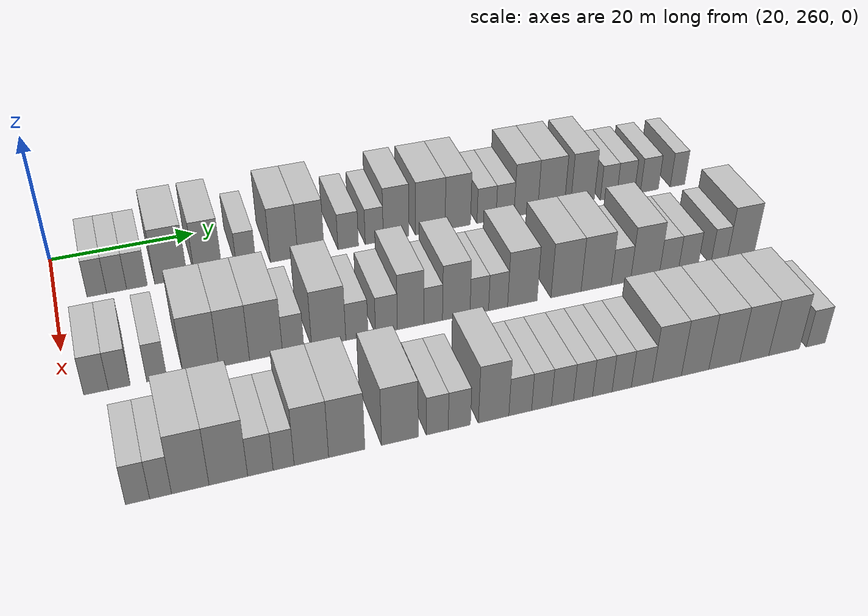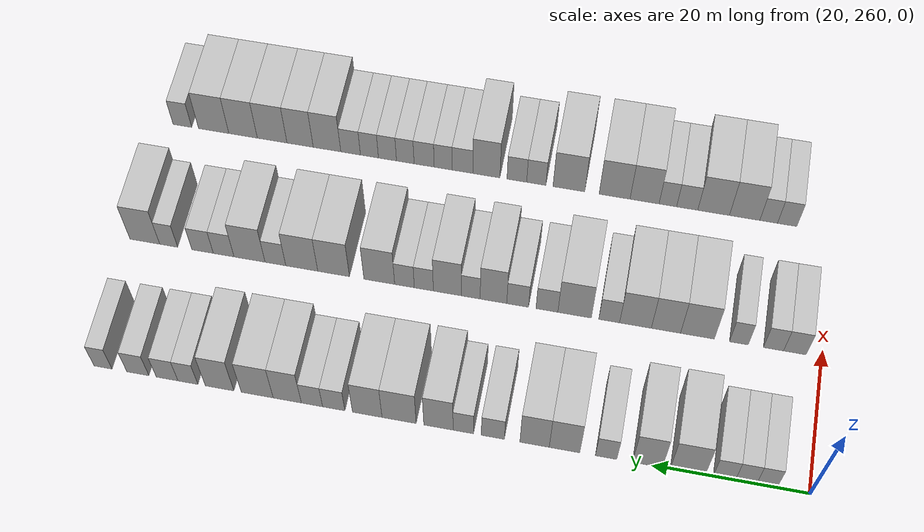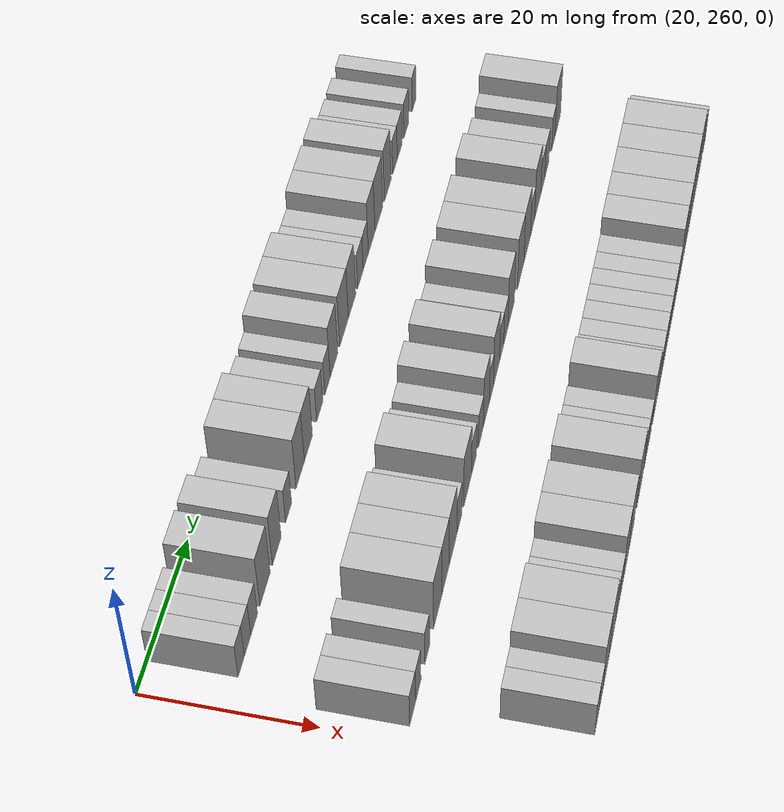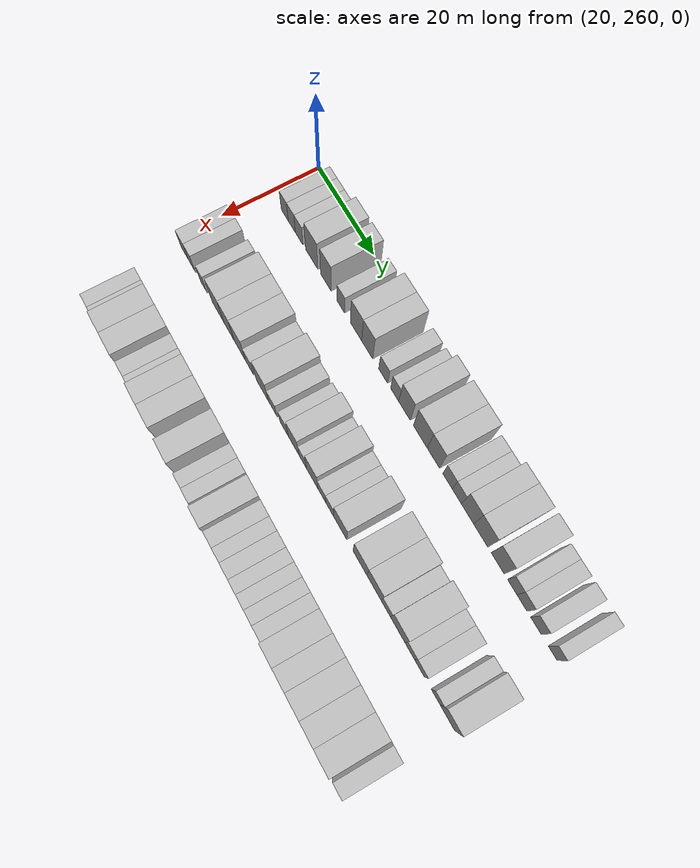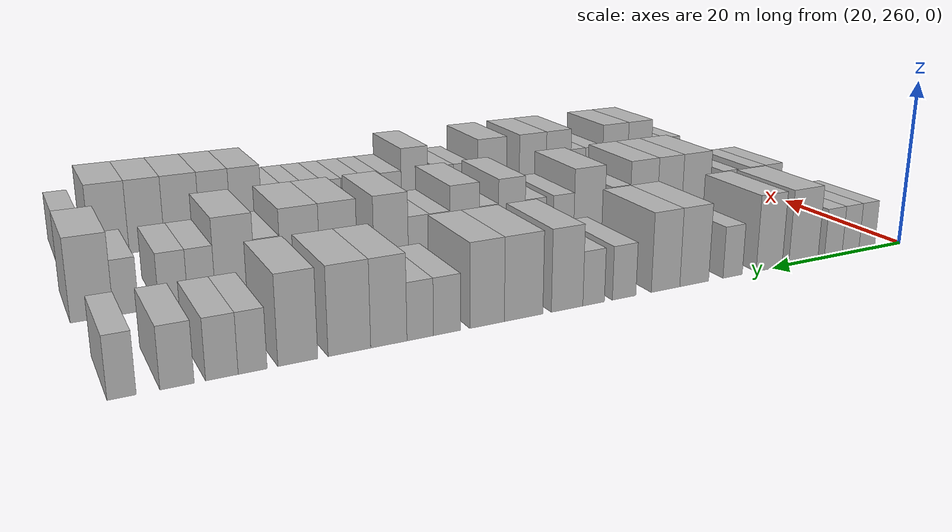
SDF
<sdf version="1.6">
 <world name="default">
  <model name="building_144">
   <static>1</static>
   <pose>25.0000 265.4624 0 0.000000 0.000000 0.000000</pose>
   <link name="link">
    <pose>0 0 3.00 0 0 0</pose>
    <collision name="collision"><geometry><box><size>10.0000 2.5818 6.0000</size></box></geometry></collision>
    <visual name="visual">
     <cast_shadows>0</cast_shadows>
     <geometry><box><size>10.0000 2.5818 6.0000</size></box></geometry>
     <material>
      <script>
       <uri>model://HANNAS_wall/materials/scripts</uri>
       <uri>model://HANNAS_wall/materials/textures</uri>
       <name>vrc/HANNAS_wall</name>
      </script>
     </material>
    </visual>
   </link>
  </model>
  <model name="building_145">
   <static>1</static>
   <pose>25.0000 268.0880 0 0.000000 0.000000 0.000000</pose>
   <link name="link">
    <pose>0 0 3.00 0 0 0</pose>
    <collision name="collision"><geometry><box><size>10.0000 2.6693 6.0000</size></box></geometry></collision>
    <visual name="visual">
     <cast_shadows>0</cast_shadows>
     <geometry><box><size>10.0000 2.6693 6.0000</size></box></geometry>
     <material>
      <script>
       <uri>model://HANNAS_wall/materials/scripts</uri>
       <uri>model://HANNAS_wall/materials/textures</uri>
       <name>vrc/HANNAS_wall</name>
      </script>
     </material>
    </visual>
   </link>
  </model>
  <model name="building_146">
   <static>1</static>
   <pose>25.0000 270.8141 0 0.000000 0.000000 0.000000</pose>
   <link name="link">
    <pose>0 0 3.00 0 0 0</pose>
    <collision name="collision"><geometry><box><size>10.0000 2.7828 6.0000</size></box></geometry></collision>
    <visual name="visual">
     <cast_shadows>0</cast_shadows>
     <geometry><box><size>10.0000 2.7828 6.0000</size></box></geometry>
     <material>
      <script>
       <uri>model://HANNAS_wall/materials/scripts</uri>
       <uri>model://HANNAS_wall/materials/textures</uri>
       <name>vrc/HANNAS_wall</name>
      </script>
     </material>
    </visual>
   </link>
  </model>
  <model name="building_147">
   <static>1</static>
   <pose>25.0000 275.4238 0 0.000000 0.000000 0.000000</pose>
   <link name="link">
    <pose>0 0 4.50 0 0 0</pose>
    <collision name="collision"><geometry><box><size>10.0000 4.4367 9.0000</size></box></geometry></collision>
    <visual name="visual">
     <cast_shadows>0</cast_shadows>
     <geometry><box><size>10.0000 4.4367 9.0000</size></box></geometry>
     <material>
      <script>
       <uri>model://HANNAS_wall/materials/scripts</uri>
       <uri>model://HANNAS_wall/materials/textures</uri>
       <name>vrc/HANNAS_wall</name>
      </script>
     </material>
    </visual>
   </link>
  </model>
  <model name="building_148">
   <static>1</static>
   <pose>25.0000 280.5439 0 0.000000 0.000000 0.000000</pose>
   <link name="link">
    <pose>0 0 4.50 0 0 0</pose>
    <collision name="collision"><geometry><box><size>10.0000 3.8035 9.0000</size></box></geometry></collision>
    <visual name="visual">
     <cast_shadows>0</cast_shadows>
     <geometry><box><size>10.0000 3.8035 9.0000</size></box></geometry>
     <material>
      <script>
       <uri>model://HANNAS_wall/materials/scripts</uri>
       <uri>model://HANNAS_wall/materials/textures</uri>
       <name>vrc/HANNAS_wall</name>
      </script>
     </material>
    </visual>
   </link>
  </model>
  <model name="building_149">
   <static>1</static>
   <pose>25.0000 285.8145 0 0.000000 0.000000 0.000000</pose>
   <link name="link">
    <pose>0 0 3.00 0 0 0</pose>
    <collision name="collision"><geometry><box><size>10.0000 2.7378 6.0000</size></box></geometry></collision>
    <visual name="visual">
     <cast_shadows>0</cast_shadows>
     <geometry><box><size>10.0000 2.7378 6.0000</size></box></geometry>
     <material>
      <script>
       <uri>model://HANNAS_wall/materials/scripts</uri>
       <uri>model://HANNAS_wall/materials/textures</uri>
       <name>vrc/HANNAS_wall</name>
      </script>
     </material>
    </visual>
   </link>
  </model>
  <model name="building_150">
   <static>1</static>
   <pose>25.0000 291.1506 0 0.000000 0.000000 0.000000</pose>
   <link name="link">
    <pose>0 0 4.50 0 0 0</pose>
    <collision name="collision"><geometry><box><size>10.0000 3.9344 9.0000</size></box></geometry></collision>
    <visual name="visual">
     <cast_shadows>0</cast_shadows>
     <geometry><box><size>10.0000 3.9344 9.0000</size></box></geometry>
     <material>
      <script>
       <uri>model://HANNAS_wall/materials/scripts</uri>
       <uri>model://HANNAS_wall/materials/textures</uri>
       <name>vrc/HANNAS_wall</name>
      </script>
     </material>
    </visual>
   </link>
  </model>
  <model name="building_151">
   <static>1</static>
   <pose>25.0000 295.0099 0 0.000000 0.000000 0.000000</pose>
   <link name="link">
    <pose>0 0 4.50 0 0 0</pose>
    <collision name="collision"><geometry><box><size>10.0000 3.7841 9.0000</size></box></geometry></collision>
    <visual name="visual">
     <cast_shadows>0</cast_shadows>
     <geometry><box><size>10.0000 3.7841 9.0000</size></box></geometry>
     <material>
      <script>
       <uri>model://HANNAS_wall/materials/scripts</uri>
       <uri>model://HANNAS_wall/materials/textures</uri>
       <name>vrc/HANNAS_wall</name>
      </script>
     </material>
    </visual>
   </link>
  </model>
  <model name="building_152">
   <static>1</static>
   <pose>25.0000 300.3996 0 0.000000 0.000000 0.000000</pose>
   <link name="link">
    <pose>0 0 3.00 0 0 0</pose>
    <collision name="collision"><geometry><box><size>10.0000 2.9953 6.0000</size></box></geometry></collision>
    <visual name="visual">
     <cast_shadows>0</cast_shadows>
     <geometry><box><size>10.0000 2.9953 6.0000</size></box></geometry>
     <material>
      <script>
       <uri>model://HANNAS_wall/materials/scripts</uri>
       <uri>model://HANNAS_wall/materials/textures</uri>
       <name>vrc/HANNAS_wall</name>
      </script>
     </material>
    </visual>
   </link>
  </model>
  <model name="building_153">
   <static>1</static>
   <pose>25.0000 304.2301 0 0.000000 0.000000 0.000000</pose>
   <link name="link">
    <pose>0 0 3.00 0 0 0</pose>
    <collision name="collision"><geometry><box><size>10.0000 2.6656 6.0000</size></box></geometry></collision>
    <visual name="visual">
     <cast_shadows>0</cast_shadows>
     <geometry><box><size>10.0000 2.6656 6.0000</size></box></geometry>
     <material>
      <script>
       <uri>model://HANNAS_wall/materials/scripts</uri>
       <uri>model://HANNAS_wall/materials/textures</uri>
       <name>vrc/HANNAS_wall</name>
      </script>
     </material>
    </visual>
   </link>
  </model>
  <model name="building_154">
   <static>1</static>
   <pose>25.0000 307.4684 0 0.000000 0.000000 0.000000</pose>
   <link name="link">
    <pose>0 0 4.50 0 0 0</pose>
    <collision name="collision"><geometry><box><size>10.0000 3.8110 9.0000</size></box></geometry></collision>
    <visual name="visual">
     <cast_shadows>0</cast_shadows>
     <geometry><box><size>10.0000 3.8110 9.0000</size></box></geometry>
     <material>
      <script>
       <uri>model://HANNAS_wall/materials/scripts</uri>
       <uri>model://HANNAS_wall/materials/textures</uri>
       <name>vrc/HANNAS_wall</name>
      </script>
     </material>
    </visual>
   </link>
  </model>
  <model name="building_155">
   <static>1</static>
   <pose>25.0000 312.6091 0 0.000000 0.000000 0.000000</pose>
   <link name="link">
    <pose>0 0 4.50 0 0 0</pose>
    <collision name="collision"><geometry><box><size>10.0000 4.4704 9.0000</size></box></geometry></collision>
    <visual name="visual">
     <cast_shadows>0</cast_shadows>
     <geometry><box><size>10.0000 4.4704 9.0000</size></box></geometry>
     <material>
      <script>
       <uri>model://HANNAS_wall/materials/scripts</uri>
       <uri>model://HANNAS_wall/materials/textures</uri>
       <name>vrc/HANNAS_wall</name>
      </script>
     </material>
    </visual>
   </link>
  </model>
  <model name="building_156">
   <static>1</static>
   <pose>25.0000 316.7868 0 0.000000 0.000000 0.000000</pose>
   <link name="link">
    <pose>0 0 4.50 0 0 0</pose>
    <collision name="collision"><geometry><box><size>10.0000 3.8850 9.0000</size></box></geometry></collision>
    <visual name="visual">
     <cast_shadows>0</cast_shadows>
     <geometry><box><size>10.0000 3.8850 9.0000</size></box></geometry>
     <material>
      <script>
       <uri>model://HANNAS_wall/materials/scripts</uri>
       <uri>model://HANNAS_wall/materials/textures</uri>
       <name>vrc/HANNAS_wall</name>
      </script>
     </material>
    </visual>
   </link>
  </model>
  <model name="building_157">
   <static>1</static>
   <pose>25.0000 321.2034 0 0.000000 0.000000 0.000000</pose>
   <link name="link">
    <pose>0 0 3.00 0 0 0</pose>
    <collision name="collision"><geometry><box><size>10.0000 2.9481 6.0000</size></box></geometry></collision>
    <visual name="visual">
     <cast_shadows>0</cast_shadows>
     <geometry><box><size>10.0000 2.9481 6.0000</size></box></geometry>
     <material>
      <script>
       <uri>model://HANNAS_wall/materials/scripts</uri>
       <uri>model://HANNAS_wall/materials/textures</uri>
       <name>vrc/HANNAS_wall</name>
      </script>
     </material>
    </visual>
   </link>
  </model>
  <model name="building_158">
   <static>1</static>
   <pose>25.0000 324.0824 0 0.000000 0.000000 0.000000</pose>
   <link name="link">
    <pose>0 0 3.00 0 0 0</pose>
    <collision name="collision"><geometry><box><size>10.0000 2.8100 6.0000</size></box></geometry></collision>
    <visual name="visual">
     <cast_shadows>0</cast_shadows>
     <geometry><box><size>10.0000 2.8100 6.0000</size></box></geometry>
     <material>
      <script>
       <uri>model://HANNAS_wall/materials/scripts</uri>
       <uri>model://HANNAS_wall/materials/textures</uri>
       <name>vrc/HANNAS_wall</name>
      </script>
     </material>
    </visual>
   </link>
  </model>
  <model name="building_159">
   <static>1</static>
   <pose>25.0000 327.3553 0 0.000000 0.000000 0.000000</pose>
   <link name="link">
    <pose>0 0 4.50 0 0 0</pose>
    <collision name="collision"><geometry><box><size>10.0000 3.7358 9.0000</size></box></geometry></collision>
    <visual name="visual">
     <cast_shadows>0</cast_shadows>
     <geometry><box><size>10.0000 3.7358 9.0000</size></box></geometry>
     <material>
      <script>
       <uri>model://HANNAS_wall/materials/scripts</uri>
       <uri>model://HANNAS_wall/materials/textures</uri>
       <name>vrc/HANNAS_wall</name>
      </script>
     </material>
    </visual>
   </link>
  </model>
  <model name="building_160">
   <static>1</static>
   <pose>25.0000 331.3475 0 0.000000 0.000000 0.000000</pose>
   <link name="link">
    <pose>0 0 4.50 0 0 0</pose>
    <collision name="collision"><geometry><box><size>10.0000 4.2485 9.0000</size></box></geometry></collision>
    <visual name="visual">
     <cast_shadows>0</cast_shadows>
     <geometry><box><size>10.0000 4.2485 9.0000</size></box></geometry>
     <material>
      <script>
       <uri>model://HANNAS_wall/materials/scripts</uri>
       <uri>model://HANNAS_wall/materials/textures</uri>
       <name>vrc/HANNAS_wall</name>
      </script>
     </material>
    </visual>
   </link>
  </model>
  <model name="building_161">
   <static>1</static>
   <pose>25.0000 336.3809 0 0.000000 0.000000 0.000000</pose>
   <link name="link">
    <pose>0 0 4.50 0 0 0</pose>
    <collision name="collision"><geometry><box><size>10.0000 3.8183 9.0000</size></box></geometry></collision>
    <visual name="visual">
     <cast_shadows>0</cast_shadows>
     <geometry><box><size>10.0000 3.8183 9.0000</size></box></geometry>
     <material>
      <script>
       <uri>model://HANNAS_wall/materials/scripts</uri>
       <uri>model://HANNAS_wall/materials/textures</uri>
       <name>vrc/HANNAS_wall</name>
      </script>
     </material>
    </visual>
   </link>
  </model>
  <model name="building_162">
   <static>1</static>
   <pose>25.0000 340.6238 0 0.000000 0.000000 0.000000</pose>
   <link name="link">
    <pose>0 0 3.00 0 0 0</pose>
    <collision name="collision"><geometry><box><size>10.0000 2.6676 6.0000</size></box></geometry></collision>
    <visual name="visual">
     <cast_shadows>0</cast_shadows>
     <geometry><box><size>10.0000 2.6676 6.0000</size></box></geometry>
     <material>
      <script>
       <uri>model://HANNAS_wall/materials/scripts</uri>
       <uri>model://HANNAS_wall/materials/textures</uri>
       <name>vrc/HANNAS_wall</name>
      </script>
     </material>
    </visual>
   </link>
  </model>
  <model name="building_163">
   <static>1</static>
   <pose>25.0000 343.4201 0 0.000000 0.000000 0.000000</pose>
   <link name="link">
    <pose>0 0 3.00 0 0 0</pose>
    <collision name="collision"><geometry><box><size>10.0000 2.9250 6.0000</size></box></geometry></collision>
    <visual name="visual">
     <cast_shadows>0</cast_shadows>
     <geometry><box><size>10.0000 2.9250 6.0000</size></box></geometry>
     <material>
      <script>
       <uri>model://HANNAS_wall/materials/scripts</uri>
       <uri>model://HANNAS_wall/materials/textures</uri>
       <name>vrc/HANNAS_wall</name>
      </script>
     </material>
    </visual>
   </link>
  </model>
  <model name="building_164">
   <static>1</static>
   <pose>25.0000 347.3724 0 0.000000 0.000000 0.000000</pose>
   <link name="link">
    <pose>0 0 3.00 0 0 0</pose>
    <collision name="collision"><geometry><box><size>10.0000 2.9797 6.0000</size></box></geometry></collision>
    <visual name="visual">
     <cast_shadows>0</cast_shadows>
     <geometry><box><size>10.0000 2.9797 6.0000</size></box></geometry>
     <material>
      <script>
       <uri>model://HANNAS_wall/materials/scripts</uri>
       <uri>model://HANNAS_wall/materials/textures</uri>
       <name>vrc/HANNAS_wall</name>
      </script>
     </material>
    </visual>
   </link>
  </model>
  <model name="building_165">
   <static>1</static>
   <pose>25.0000 352.0794 0 0.000000 0.000000 0.000000</pose>
   <link name="link">
    <pose>0 0 3.00 0 0 0</pose>
    <collision name="collision"><geometry><box><size>10.0000 2.4342 6.0000</size></box></geometry></collision>
    <visual name="visual">
     <cast_shadows>0</cast_shadows>
     <geometry><box><size>10.0000 2.4342 6.0000</size></box></geometry>
     <material>
      <script>
       <uri>model://HANNAS_wall/materials/scripts</uri>
       <uri>model://HANNAS_wall/materials/textures</uri>
       <name>vrc/HANNAS_wall</name>
      </script>
     </material>
    </visual>
   </link>
  </model>
  <model name="building_309">
   <static>1</static>
   <pose>44.0000 263.5628 0 0.000000 0.000000 0.000000</pose>
   <link name="link">
    <pose>0 0 3.00 0 0 0</pose>
    <collision name="collision"><geometry><box><size>10.0000 2.9654 6.0000</size></box></geometry></collision>
    <visual name="visual">
     <cast_shadows>0</cast_shadows>
     <geometry><box><size>10.0000 2.9654 6.0000</size></box></geometry>
     <material>
      <script>
       <uri>model://HANNAS_wall/materials/scripts</uri>
       <uri>model://HANNAS_wall/materials/textures</uri>
       <name>vrc/HANNAS_wall</name>
      </script>
     </material>
    </visual>
   </link>
  </model>
  <model name="building_310">
   <static>1</static>
   <pose>44.0000 266.3682 0 0.000000 0.000000 0.000000</pose>
   <link name="link">
    <pose>0 0 3.00 0 0 0</pose>
    <collision name="collision"><geometry><box><size>10.0000 2.6452 6.0000</size></box></geometry></collision>
    <visual name="visual">
     <cast_shadows>0</cast_shadows>
     <geometry><box><size>10.0000 2.6452 6.0000</size></box></geometry>
     <material>
      <script>
       <uri>model://HANNAS_wall/materials/scripts</uri>
       <uri>model://HANNAS_wall/materials/textures</uri>
       <name>vrc/HANNAS_wall</name>
      </script>
     </material>
    </visual>
   </link>
  </model>
  <model name="building_311">
   <static>1</static>
   <pose>44.0000 270.9281 0 0.000000 0.000000 0.000000</pose>
   <link name="link">
    <pose>0 0 3.00 0 0 0</pose>
    <collision name="collision"><geometry><box><size>10.0000 2.4746 6.0000</size></box></geometry></collision>
    <visual name="visual">
     <cast_shadows>0</cast_shadows>
     <geometry><box><size>10.0000 2.4746 6.0000</size></box></geometry>
     <material>
      <script>
       <uri>model://HANNAS_wall/materials/scripts</uri>
       <uri>model://HANNAS_wall/materials/textures</uri>
       <name>vrc/HANNAS_wall</name>
      </script>
     </material>
    </visual>
   </link>
  </model>
  <model name="building_312">
   <static>1</static>
   <pose>44.0000 276.4060 0 0.000000 0.000000 0.000000</pose>
   <link name="link">
    <pose>0 0 4.50 0 0 0</pose>
    <collision name="collision"><geometry><box><size>10.0000 4.4813 9.0000</size></box></geometry></collision>
    <visual name="visual">
     <cast_shadows>0</cast_shadows>
     <geometry><box><size>10.0000 4.4813 9.0000</size></box></geometry>
     <material>
      <script>
       <uri>model://HANNAS_wall/materials/scripts</uri>
       <uri>model://HANNAS_wall/materials/textures</uri>
       <name>vrc/HANNAS_wall</name>
      </script>
     </material>
    </visual>
   </link>
  </model>
  <model name="building_313">
   <static>1</static>
   <pose>44.0000 280.5909 0 0.000000 0.000000 0.000000</pose>
   <link name="link">
    <pose>0 0 4.50 0 0 0</pose>
    <collision name="collision"><geometry><box><size>10.0000 3.8885 9.0000</size></box></geometry></collision>
    <visual name="visual">
     <cast_shadows>0</cast_shadows>
     <geometry><box><size>10.0000 3.8885 9.0000</size></box></geometry>
     <material>
      <script>
       <uri>model://HANNAS_wall/materials/scripts</uri>
       <uri>model://HANNAS_wall/materials/textures</uri>
       <name>vrc/HANNAS_wall</name>
      </script>
     </material>
    </visual>
   </link>
  </model>
  <model name="building_314">
   <static>1</static>
   <pose>44.0000 284.6546 0 0.000000 0.000000 0.000000</pose>
   <link name="link">
    <pose>0 0 4.50 0 0 0</pose>
    <collision name="collision"><geometry><box><size>10.0000 4.2390 9.0000</size></box></geometry></collision>
    <visual name="visual">
     <cast_shadows>0</cast_shadows>
     <geometry><box><size>10.0000 4.2390 9.0000</size></box></geometry>
     <material>
      <script>
       <uri>model://HANNAS_wall/materials/scripts</uri>
       <uri>model://HANNAS_wall/materials/textures</uri>
       <name>vrc/HANNAS_wall</name>
      </script>
     </material>
    </visual>
   </link>
  </model>
  <model name="building_315">
   <static>1</static>
   <pose>44.0000 288.1601 0 0.000000 0.000000 0.000000</pose>
   <link name="link">
    <pose>0 0 3.00 0 0 0</pose>
    <collision name="collision"><geometry><box><size>10.0000 2.7719 6.0000</size></box></geometry></collision>
    <visual name="visual">
     <cast_shadows>0</cast_shadows>
     <geometry><box><size>10.0000 2.7719 6.0000</size></box></geometry>
     <material>
      <script>
       <uri>model://HANNAS_wall/materials/scripts</uri>
       <uri>model://HANNAS_wall/materials/textures</uri>
       <name>vrc/HANNAS_wall</name>
      </script>
     </material>
    </visual>
   </link>
  </model>
  <model name="building_316">
   <static>1</static>
   <pose>44.0000 292.7944 0 0.000000 0.000000 0.000000</pose>
   <link name="link">
    <pose>0 0 4.50 0 0 0</pose>
    <collision name="collision"><geometry><box><size>10.0000 4.4967 9.0000</size></box></geometry></collision>
    <visual name="visual">
     <cast_shadows>0</cast_shadows>
     <geometry><box><size>10.0000 4.4967 9.0000</size></box></geometry>
     <material>
      <script>
       <uri>model://HANNAS_wall/materials/scripts</uri>
       <uri>model://HANNAS_wall/materials/textures</uri>
       <name>vrc/HANNAS_wall</name>
      </script>
     </material>
    </visual>
   </link>
  </model>
  <model name="building_317">
   <static>1</static>
   <pose>44.0000 296.5218 0 0.000000 0.000000 0.000000</pose>
   <link name="link">
    <pose>0 0 3.00 0 0 0</pose>
    <collision name="collision"><geometry><box><size>10.0000 2.9581 6.0000</size></box></geometry></collision>
    <visual name="visual">
     <cast_shadows>0</cast_shadows>
     <geometry><box><size>10.0000 2.9581 6.0000</size></box></geometry>
     <material>
      <script>
       <uri>model://HANNAS_wall/materials/scripts</uri>
       <uri>model://HANNAS_wall/materials/textures</uri>
       <name>vrc/HANNAS_wall</name>
      </script>
     </material>
    </visual>
   </link>
  </model>
  <model name="building_318">
   <static>1</static>
   <pose>44.0000 300.4734 0 0.000000 0.000000 0.000000</pose>
   <link name="link">
    <pose>0 0 3.00 0 0 0</pose>
    <collision name="collision"><geometry><box><size>10.0000 2.9452 6.0000</size></box></geometry></collision>
    <visual name="visual">
     <cast_shadows>0</cast_shadows>
     <geometry><box><size>10.0000 2.9452 6.0000</size></box></geometry>
     <material>
      <script>
       <uri>model://HANNAS_wall/materials/scripts</uri>
       <uri>model://HANNAS_wall/materials/textures</uri>
       <name>vrc/HANNAS_wall</name>
      </script>
     </material>
    </visual>
   </link>
  </model>
  <model name="building_319">
   <static>1</static>
   <pose>44.0000 303.7548 0 0.000000 0.000000 0.000000</pose>
   <link name="link">
    <pose>0 0 4.50 0 0 0</pose>
    <collision name="collision"><geometry><box><size>10.0000 3.6176 9.0000</size></box></geometry></collision>
    <visual name="visual">
     <cast_shadows>0</cast_shadows>
     <geometry><box><size>10.0000 3.6176 9.0000</size></box></geometry>
     <material>
      <script>
       <uri>model://HANNAS_wall/materials/scripts</uri>
       <uri>model://HANNAS_wall/materials/textures</uri>
       <name>vrc/HANNAS_wall</name>
      </script>
     </material>
    </visual>
   </link>
  </model>
  <model name="building_320">
   <static>1</static>
   <pose>44.0000 306.8338 0 0.000000 0.000000 0.000000</pose>
   <link name="link">
    <pose>0 0 3.00 0 0 0</pose>
    <collision name="collision"><geometry><box><size>10.0000 2.5403 6.0000</size></box></geometry></collision>
    <visual name="visual">
     <cast_shadows>0</cast_shadows>
     <geometry><box><size>10.0000 2.5403 6.0000</size></box></geometry>
     <material>
      <script>
       <uri>model://HANNAS_wall/materials/scripts</uri>
       <uri>model://HANNAS_wall/materials/textures</uri>
       <name>vrc/HANNAS_wall</name>
      </script>
     </material>
    </visual>
   </link>
  </model>
  <model name="building_321">
   <static>1</static>
   <pose>44.0000 310.0144 0 0.000000 0.000000 0.000000</pose>
   <link name="link">
    <pose>0 0 4.50 0 0 0</pose>
    <collision name="collision"><geometry><box><size>10.0000 3.8211 9.0000</size></box></geometry></collision>
    <visual name="visual">
     <cast_shadows>0</cast_shadows>
     <geometry><box><size>10.0000 3.8211 9.0000</size></box></geometry>
     <material>
      <script>
       <uri>model://HANNAS_wall/materials/scripts</uri>
       <uri>model://HANNAS_wall/materials/textures</uri>
       <name>vrc/HANNAS_wall</name>
      </script>
     </material>
    </visual>
   </link>
  </model>
  <model name="building_322">
   <static>1</static>
   <pose>44.0000 313.2288 0 0.000000 0.000000 0.000000</pose>
   <link name="link">
    <pose>0 0 3.00 0 0 0</pose>
    <collision name="collision"><geometry><box><size>10.0000 2.6077 6.0000</size></box></geometry></collision>
    <visual name="visual">
     <cast_shadows>0</cast_shadows>
     <geometry><box><size>10.0000 2.6077 6.0000</size></box></geometry>
     <material>
      <script>
       <uri>model://HANNAS_wall/materials/scripts</uri>
       <uri>model://HANNAS_wall/materials/textures</uri>
       <name>vrc/HANNAS_wall</name>
      </script>
     </material>
    </visual>
   </link>
  </model>
  <model name="building_323">
   <static>1</static>
   <pose>44.0000 315.8774 0 0.000000 0.000000 0.000000</pose>
   <link name="link">
    <pose>0 0 3.00 0 0 0</pose>
    <collision name="collision"><geometry><box><size>10.0000 2.6895 6.0000</size></box></geometry></collision>
    <visual name="visual">
     <cast_shadows>0</cast_shadows>
     <geometry><box><size>10.0000 2.6895 6.0000</size></box></geometry>
     <material>
      <script>
       <uri>model://HANNAS_wall/materials/scripts</uri>
       <uri>model://HANNAS_wall/materials/textures</uri>
       <name>vrc/HANNAS_wall</name>
      </script>
     </material>
    </visual>
   </link>
  </model>
  <model name="building_324">
   <static>1</static>
   <pose>44.0000 319.3320 0 0.000000 0.000000 0.000000</pose>
   <link name="link">
    <pose>0 0 4.50 0 0 0</pose>
    <collision name="collision"><geometry><box><size>10.0000 4.2196 9.0000</size></box></geometry></collision>
    <visual name="visual">
     <cast_shadows>0</cast_shadows>
     <geometry><box><size>10.0000 4.2196 9.0000</size></box></geometry>
     <material>
      <script>
       <uri>model://HANNAS_wall/materials/scripts</uri>
       <uri>model://HANNAS_wall/materials/textures</uri>
       <name>vrc/HANNAS_wall</name>
      </script>
     </material>
    </visual>
   </link>
  </model>
  <model name="building_325">
   <static>1</static>
   <pose>44.0000 325.6332 0 0.000000 0.000000 0.000000</pose>
   <link name="link">
    <pose>0 0 4.50 0 0 0</pose>
    <collision name="collision"><geometry><box><size>10.0000 4.3828 9.0000</size></box></geometry></collision>
    <visual name="visual">
     <cast_shadows>0</cast_shadows>
     <geometry><box><size>10.0000 4.3828 9.0000</size></box></geometry>
     <material>
      <script>
       <uri>model://HANNAS_wall/materials/scripts</uri>
       <uri>model://HANNAS_wall/materials/textures</uri>
       <name>vrc/HANNAS_wall</name>
      </script>
     </material>
    </visual>
   </link>
  </model>
  <model name="building_326">
   <static>1</static>
   <pose>44.0000 330.0427 0 0.000000 0.000000 0.000000</pose>
   <link name="link">
    <pose>0 0 4.50 0 0 0</pose>
    <collision name="collision"><geometry><box><size>10.0000 4.4362 9.0000</size></box></geometry></collision>
    <visual name="visual">
     <cast_shadows>0</cast_shadows>
     <geometry><box><size>10.0000 4.4362 9.0000</size></box></geometry>
     <material>
      <script>
       <uri>model://HANNAS_wall/materials/scripts</uri>
       <uri>model://HANNAS_wall/materials/textures</uri>
       <name>vrc/HANNAS_wall</name>
      </script>
     </material>
    </visual>
   </link>
  </model>
  <model name="building_327">
   <static>1</static>
   <pose>44.0000 333.7032 0 0.000000 0.000000 0.000000</pose>
   <link name="link">
    <pose>0 0 3.00 0 0 0</pose>
    <collision name="collision"><geometry><box><size>10.0000 2.8849 6.0000</size></box></geometry></collision>
    <visual name="visual">
     <cast_shadows>0</cast_shadows>
     <geometry><box><size>10.0000 2.8849 6.0000</size></box></geometry>
     <material>
      <script>
       <uri>model://HANNAS_wall/materials/scripts</uri>
       <uri>model://HANNAS_wall/materials/textures</uri>
       <name>vrc/HANNAS_wall</name>
      </script>
     </material>
    </visual>
   </link>
  </model>
  <model name="building_328">
   <static>1</static>
   <pose>44.0000 337.3113 0 0.000000 0.000000 0.000000</pose>
   <link name="link">
    <pose>0 0 4.50 0 0 0</pose>
    <collision name="collision"><geometry><box><size>10.0000 4.3311 9.0000</size></box></geometry></collision>
    <visual name="visual">
     <cast_shadows>0</cast_shadows>
     <geometry><box><size>10.0000 4.3311 9.0000</size></box></geometry>
     <material>
      <script>
       <uri>model://HANNAS_wall/materials/scripts</uri>
       <uri>model://HANNAS_wall/materials/textures</uri>
       <name>vrc/HANNAS_wall</name>
      </script>
     </material>
    </visual>
   </link>
  </model>
  <model name="building_329">
   <static>1</static>
   <pose>44.0000 340.9295 0 0.000000 0.000000 0.000000</pose>
   <link name="link">
    <pose>0 0 3.00 0 0 0</pose>
    <collision name="collision"><geometry><box><size>10.0000 2.9052 6.0000</size></box></geometry></collision>
    <visual name="visual">
     <cast_shadows>0</cast_shadows>
     <geometry><box><size>10.0000 2.9052 6.0000</size></box></geometry>
     <material>
      <script>
       <uri>model://HANNAS_wall/materials/scripts</uri>
       <uri>model://HANNAS_wall/materials/textures</uri>
       <name>vrc/HANNAS_wall</name>
      </script>
     </material>
    </visual>
   </link>
  </model>
  <model name="building_330">
   <static>1</static>
   <pose>44.0000 343.8819 0 0.000000 0.000000 0.000000</pose>
   <link name="link">
    <pose>0 0 3.00 0 0 0</pose>
    <collision name="collision"><geometry><box><size>10.0000 2.9996 6.0000</size></box></geometry></collision>
    <visual name="visual">
     <cast_shadows>0</cast_shadows>
     <geometry><box><size>10.0000 2.9996 6.0000</size></box></geometry>
     <material>
      <script>
       <uri>model://HANNAS_wall/materials/scripts</uri>
       <uri>model://HANNAS_wall/materials/textures</uri>
       <name>vrc/HANNAS_wall</name>
      </script>
     </material>
    </visual>
   </link>
  </model>
  <model name="building_331">
   <static>1</static>
   <pose>44.0000 348.6469 0 0.000000 0.000000 0.000000</pose>
   <link name="link">
    <pose>0 0 3.00 0 0 0</pose>
    <collision name="collision"><geometry><box><size>10.0000 2.5304 6.0000</size></box></geometry></collision>
    <visual name="visual">
     <cast_shadows>0</cast_shadows>
     <geometry><box><size>10.0000 2.5304 6.0000</size></box></geometry>
     <material>
      <script>
       <uri>model://HANNAS_wall/materials/scripts</uri>
       <uri>model://HANNAS_wall/materials/textures</uri>
       <name>vrc/HANNAS_wall</name>
      </script>
     </material>
    </visual>
   </link>
  </model>
  <model name="building_332">
   <static>1</static>
   <pose>44.0000 352.0154 0 0.000000 0.000000 0.000000</pose>
   <link name="link">
    <pose>0 0 4.50 0 0 0</pose>
    <collision name="collision"><geometry><box><size>10.0000 4.2066 9.0000</size></box></geometry></collision>
    <visual name="visual">
     <cast_shadows>0</cast_shadows>
     <geometry><box><size>10.0000 4.2066 9.0000</size></box></geometry>
     <material>
      <script>
       <uri>model://HANNAS_wall/materials/scripts</uri>
       <uri>model://HANNAS_wall/materials/textures</uri>
       <name>vrc/HANNAS_wall</name>
      </script>
     </material>
    </visual>
   </link>
  </model>
  <model name="building_496">
   <static>1</static>
   <pose>63.0000 266.2559 0 0.000000 0.000000 0.000000</pose>
   <link name="link">
    <pose>0 0 3.00 0 0 0</pose>
    <collision name="collision"><geometry><box><size>10.0000 2.6533 6.0000</size></box></geometry></collision>
    <visual name="visual">
     <cast_shadows>0</cast_shadows>
     <geometry><box><size>10.0000 2.6533 6.0000</size></box></geometry>
     <material>
      <script>
       <uri>model://HANNAS_wall/materials/scripts</uri>
       <uri>model://HANNAS_wall/materials/textures</uri>
       <name>vrc/HANNAS_wall</name>
      </script>
     </material>
    </visual>
   </link>
  </model>
  <model name="building_497">
   <static>1</static>
   <pose>63.0000 268.7954 0 0.000000 0.000000 0.000000</pose>
   <link name="link">
    <pose>0 0 3.00 0 0 0</pose>
    <collision name="collision"><geometry><box><size>10.0000 2.4257 6.0000</size></box></geometry></collision>
    <visual name="visual">
     <cast_shadows>0</cast_shadows>
     <geometry><box><size>10.0000 2.4257 6.0000</size></box></geometry>
     <material>
      <script>
       <uri>model://HANNAS_wall/materials/scripts</uri>
       <uri>model://HANNAS_wall/materials/textures</uri>
       <name>vrc/HANNAS_wall</name>
      </script>
     </material>
    </visual>
   </link>
  </model>
  <model name="building_498">
   <static>1</static>
   <pose>63.0000 272.1022 0 0.000000 0.000000 0.000000</pose>
   <link name="link">
    <pose>0 0 4.50 0 0 0</pose>
    <collision name="collision"><geometry><box><size>10.0000 4.1880 9.0000</size></box></geometry></collision>
    <visual name="visual">
     <cast_shadows>0</cast_shadows>
     <geometry><box><size>10.0000 4.1880 9.0000</size></box></geometry>
     <material>
      <script>
       <uri>model://HANNAS_wall/materials/scripts</uri>
       <uri>model://HANNAS_wall/materials/textures</uri>
       <name>vrc/HANNAS_wall</name>
      </script>
     </material>
    </visual>
   </link>
  </model>
  <model name="building_499">
   <static>1</static>
   <pose>63.0000 276.3873 0 0.000000 0.000000 0.000000</pose>
   <link name="link">
    <pose>0 0 4.50 0 0 0</pose>
    <collision name="collision"><geometry><box><size>10.0000 4.3822 9.0000</size></box></geometry></collision>
    <visual name="visual">
     <cast_shadows>0</cast_shadows>
     <geometry><box><size>10.0000 4.3822 9.0000</size></box></geometry>
     <material>
      <script>
       <uri>model://HANNAS_wall/materials/scripts</uri>
       <uri>model://HANNAS_wall/materials/textures</uri>
       <name>vrc/HANNAS_wall</name>
      </script>
     </material>
    </visual>
   </link>
  </model>
  <model name="building_500">
   <static>1</static>
   <pose>63.0000 280.0445 0 0.000000 0.000000 0.000000</pose>
   <link name="link">
    <pose>0 0 3.00 0 0 0</pose>
    <collision name="collision"><geometry><box><size>10.0000 2.9322 6.0000</size></box></geometry></collision>
    <visual name="visual">
     <cast_shadows>0</cast_shadows>
     <geometry><box><size>10.0000 2.9322 6.0000</size></box></geometry>
     <material>
      <script>
       <uri>model://HANNAS_wall/materials/scripts</uri>
       <uri>model://HANNAS_wall/materials/textures</uri>
       <name>vrc/HANNAS_wall</name>
      </script>
     </material>
    </visual>
   </link>
  </model>
  <model name="building_501">
   <static>1</static>
   <pose>63.0000 282.7296 0 0.000000 0.000000 0.000000</pose>
   <link name="link">
    <pose>0 0 3.00 0 0 0</pose>
    <collision name="collision"><geometry><box><size>10.0000 2.4380 6.0000</size></box></geometry></collision>
    <visual name="visual">
     <cast_shadows>0</cast_shadows>
     <geometry><box><size>10.0000 2.4380 6.0000</size></box></geometry>
     <material>
      <script>
       <uri>model://HANNAS_wall/materials/scripts</uri>
       <uri>model://HANNAS_wall/materials/textures</uri>
       <name>vrc/HANNAS_wall</name>
      </script>
     </material>
    </visual>
   </link>
  </model>
  <model name="building_502">
   <static>1</static>
   <pose>63.0000 285.9698 0 0.000000 0.000000 0.000000</pose>
   <link name="link">
    <pose>0 0 4.50 0 0 0</pose>
    <collision name="collision"><geometry><box><size>10.0000 4.0424 9.0000</size></box></geometry></collision>
    <visual name="visual">
     <cast_shadows>0</cast_shadows>
     <geometry><box><size>10.0000 4.0424 9.0000</size></box></geometry>
     <material>
      <script>
       <uri>model://HANNAS_wall/materials/scripts</uri>
       <uri>model://HANNAS_wall/materials/textures</uri>
       <name>vrc/HANNAS_wall</name>
      </script>
     </material>
    </visual>
   </link>
  </model>
  <model name="building_503">
   <static>1</static>
   <pose>63.0000 290.1500 0 0.000000 0.000000 0.000000</pose>
   <link name="link">
    <pose>0 0 4.50 0 0 0</pose>
    <collision name="collision"><geometry><box><size>10.0000 4.3178 9.0000</size></box></geometry></collision>
    <visual name="visual">
     <cast_shadows>0</cast_shadows>
     <geometry><box><size>10.0000 4.3178 9.0000</size></box></geometry>
     <material>
      <script>
       <uri>model://HANNAS_wall/materials/scripts</uri>
       <uri>model://HANNAS_wall/materials/textures</uri>
       <name>vrc/HANNAS_wall</name>
      </script>
     </material>
    </visual>
   </link>
  </model>
  <model name="building_504">
   <static>1</static>
   <pose>63.0000 296.5425 0 0.000000 0.000000 0.000000</pose>
   <link name="link">
    <pose>0 0 4.50 0 0 0</pose>
    <collision name="collision"><geometry><box><size>10.0000 4.4672 9.0000</size></box></geometry></collision>
    <visual name="visual">
     <cast_shadows>0</cast_shadows>
     <geometry><box><size>10.0000 4.4672 9.0000</size></box></geometry>
     <material>
      <script>
       <uri>model://HANNAS_wall/materials/scripts</uri>
       <uri>model://HANNAS_wall/materials/textures</uri>
       <name>vrc/HANNAS_wall</name>
      </script>
     </material>
    </visual>
   </link>
  </model>
  <model name="building_505">
   <static>1</static>
   <pose>63.0000 301.1308 0 0.000000 0.000000 0.000000</pose>
   <link name="link">
    <pose>0 0 3.00 0 0 0</pose>
    <collision name="collision"><geometry><box><size>10.0000 2.7094 6.0000</size></box></geometry></collision>
    <visual name="visual">
     <cast_shadows>0</cast_shadows>
     <geometry><box><size>10.0000 2.7094 6.0000</size></box></geometry>
     <material>
      <script>
       <uri>model://HANNAS_wall/materials/scripts</uri>
       <uri>model://HANNAS_wall/materials/textures</uri>
       <name>vrc/HANNAS_wall</name>
      </script>
     </material>
    </visual>
   </link>
  </model>
  <model name="building_506">
   <static>1</static>
   <pose>63.0000 303.8743 0 0.000000 0.000000 0.000000</pose>
   <link name="link">
    <pose>0 0 3.00 0 0 0</pose>
    <collision name="collision"><geometry><box><size>10.0000 2.7776 6.0000</size></box></geometry></collision>
    <visual name="visual">
     <cast_shadows>0</cast_shadows>
     <geometry><box><size>10.0000 2.7776 6.0000</size></box></geometry>
     <material>
      <script>
       <uri>model://HANNAS_wall/materials/scripts</uri>
       <uri>model://HANNAS_wall/materials/textures</uri>
       <name>vrc/HANNAS_wall</name>
      </script>
     </material>
    </visual>
   </link>
  </model>
  <model name="building_507">
   <static>1</static>
   <pose>63.0000 308.1896 0 0.000000 0.000000 0.000000</pose>
   <link name="link">
    <pose>0 0 4.50 0 0 0</pose>
    <collision name="collision"><geometry><box><size>10.0000 3.8531 9.0000</size></box></geometry></collision>
    <visual name="visual">
     <cast_shadows>0</cast_shadows>
     <geometry><box><size>10.0000 3.8531 9.0000</size></box></geometry>
     <material>
      <script>
       <uri>model://HANNAS_wall/materials/scripts</uri>
       <uri>model://HANNAS_wall/materials/textures</uri>
       <name>vrc/HANNAS_wall</name>
      </script>
     </material>
    </visual>
   </link>
  </model>
  <model name="building_508">
   <static>1</static>
   <pose>63.0000 311.5797 0 0.000000 0.000000 0.000000</pose>
   <link name="link">
    <pose>0 0 3.00 0 0 0</pose>
    <collision name="collision"><geometry><box><size>10.0000 2.9270 6.0000</size></box></geometry></collision>
    <visual name="visual">
     <cast_shadows>0</cast_shadows>
     <geometry><box><size>10.0000 2.9270 6.0000</size></box></geometry>
     <material>
      <script>
       <uri>model://HANNAS_wall/materials/scripts</uri>
       <uri>model://HANNAS_wall/materials/textures</uri>
       <name>vrc/HANNAS_wall</name>
      </script>
     </material>
    </visual>
   </link>
  </model>
  <model name="building_509">
   <static>1</static>
   <pose>63.0000 314.3250 0 0.000000 0.000000 0.000000</pose>
   <link name="link">
    <pose>0 0 3.00 0 0 0</pose>
    <collision name="collision"><geometry><box><size>10.0000 2.5635 6.0000</size></box></geometry></collision>
    <visual name="visual">
     <cast_shadows>0</cast_shadows>
     <geometry><box><size>10.0000 2.5635 6.0000</size></box></geometry>
     <material>
      <script>
       <uri>model://HANNAS_wall/materials/scripts</uri>
       <uri>model://HANNAS_wall/materials/textures</uri>
       <name>vrc/HANNAS_wall</name>
      </script>
     </material>
    </visual>
   </link>
  </model>
  <model name="building_510">
   <static>1</static>
   <pose>63.0000 317.0429 0 0.000000 0.000000 0.000000</pose>
   <link name="link">
    <pose>0 0 3.00 0 0 0</pose>
    <collision name="collision"><geometry><box><size>10.0000 2.8722 6.0000</size></box></geometry></collision>
    <visual name="visual">
     <cast_shadows>0</cast_shadows>
     <geometry><box><size>10.0000 2.8722 6.0000</size></box></geometry>
     <material>
      <script>
       <uri>model://HANNAS_wall/materials/scripts</uri>
       <uri>model://HANNAS_wall/materials/textures</uri>
       <name>vrc/HANNAS_wall</name>
      </script>
     </material>
    </visual>
   </link>
  </model>
  <model name="building_511">
   <static>1</static>
   <pose>63.0000 319.7391 0 0.000000 0.000000 0.000000</pose>
   <link name="link">
    <pose>0 0 3.00 0 0 0</pose>
    <collision name="collision"><geometry><box><size>10.0000 2.5203 6.0000</size></box></geometry></collision>
    <visual name="visual">
     <cast_shadows>0</cast_shadows>
     <geometry><box><size>10.0000 2.5203 6.0000</size></box></geometry>
     <material>
      <script>
       <uri>model://HANNAS_wall/materials/scripts</uri>
       <uri>model://HANNAS_wall/materials/textures</uri>
       <name>vrc/HANNAS_wall</name>
      </script>
     </material>
    </visual>
   </link>
  </model>
  <model name="building_512">
   <static>1</static>
   <pose>63.0000 322.2917 0 0.000000 0.000000 0.000000</pose>
   <link name="link">
    <pose>0 0 3.00 0 0 0</pose>
    <collision name="collision"><geometry><box><size>10.0000 2.5849 6.0000</size></box></geometry></collision>
    <visual name="visual">
     <cast_shadows>0</cast_shadows>
     <geometry><box><size>10.0000 2.5849 6.0000</size></box></geometry>
     <material>
      <script>
       <uri>model://HANNAS_wall/materials/scripts</uri>
       <uri>model://HANNAS_wall/materials/textures</uri>
       <name>vrc/HANNAS_wall</name>
      </script>
     </material>
    </visual>
   </link>
  </model>
  <model name="building_513">
   <static>1</static>
   <pose>63.0000 324.8786 0 0.000000 0.000000 0.000000</pose>
   <link name="link">
    <pose>0 0 3.00 0 0 0</pose>
    <collision name="collision"><geometry><box><size>10.0000 2.5888 6.0000</size></box></geometry></collision>
    <visual name="visual">
     <cast_shadows>0</cast_shadows>
     <geometry><box><size>10.0000 2.5888 6.0000</size></box></geometry>
     <material>
      <script>
       <uri>model://HANNAS_wall/materials/scripts</uri>
       <uri>model://HANNAS_wall/materials/textures</uri>
       <name>vrc/HANNAS_wall</name>
      </script>
     </material>
    </visual>
   </link>
  </model>
  <model name="building_514">
   <static>1</static>
   <pose>63.0000 327.5866 0 0.000000 0.000000 0.000000</pose>
   <link name="link">
    <pose>0 0 3.00 0 0 0</pose>
    <collision name="collision"><geometry><box><size>10.0000 2.8272 6.0000</size></box></geometry></collision>
    <visual name="visual">
     <cast_shadows>0</cast_shadows>
     <geometry><box><size>10.0000 2.8272 6.0000</size></box></geometry>
     <material>
      <script>
       <uri>model://HANNAS_wall/materials/scripts</uri>
       <uri>model://HANNAS_wall/materials/textures</uri>
       <name>vrc/HANNAS_wall</name>
      </script>
     </material>
    </visual>
   </link>
  </model>
  <model name="building_515">
   <static>1</static>
   <pose>63.0000 330.9923 0 0.000000 0.000000 0.000000</pose>
   <link name="link">
    <pose>0 0 4.50 0 0 0</pose>
    <collision name="collision"><geometry><box><size>10.0000 3.9842 9.0000</size></box></geometry></collision>
    <visual name="visual">
     <cast_shadows>0</cast_shadows>
     <geometry><box><size>10.0000 3.9842 9.0000</size></box></geometry>
     <material>
      <script>
       <uri>model://HANNAS_wall/materials/scripts</uri>
       <uri>model://HANNAS_wall/materials/textures</uri>
       <name>vrc/HANNAS_wall</name>
      </script>
     </material>
    </visual>
   </link>
  </model>
  <model name="building_516">
   <static>1</static>
   <pose>63.0000 334.8856 0 0.000000 0.000000 0.000000</pose>
   <link name="link">
    <pose>0 0 4.50 0 0 0</pose>
    <collision name="collision"><geometry><box><size>10.0000 3.8023 9.0000</size></box></geometry></collision>
    <visual name="visual">
     <cast_shadows>0</cast_shadows>
     <geometry><box><size>10.0000 3.8023 9.0000</size></box></geometry>
     <material>
      <script>
       <uri>model://HANNAS_wall/materials/scripts</uri>
       <uri>model://HANNAS_wall/materials/textures</uri>
       <name>vrc/HANNAS_wall</name>
      </script>
     </material>
    </visual>
   </link>
  </model>
  <model name="building_517">
   <static>1</static>
   <pose>63.0000 338.9434 0 0.000000 0.000000 0.000000</pose>
   <link name="link">
    <pose>0 0 4.50 0 0 0</pose>
    <collision name="collision"><geometry><box><size>10.0000 4.3133 9.0000</size></box></geometry></collision>
    <visual name="visual">
     <cast_shadows>0</cast_shadows>
     <geometry><box><size>10.0000 4.3133 9.0000</size></box></geometry>
     <material>
      <script>
       <uri>model://HANNAS_wall/materials/scripts</uri>
       <uri>model://HANNAS_wall/materials/textures</uri>
       <name>vrc/HANNAS_wall</name>
      </script>
     </material>
    </visual>
   </link>
  </model>
  <model name="building_518">
   <static>1</static>
   <pose>63.0000 343.1798 0 0.000000 0.000000 0.000000</pose>
   <link name="link">
    <pose>0 0 4.50 0 0 0</pose>
    <collision name="collision"><geometry><box><size>10.0000 4.1596 9.0000</size></box></geometry></collision>
    <visual name="visual">
     <cast_shadows>0</cast_shadows>
     <geometry><box><size>10.0000 4.1596 9.0000</size></box></geometry>
     <material>
      <script>
       <uri>model://HANNAS_wall/materials/scripts</uri>
       <uri>model://HANNAS_wall/materials/textures</uri>
       <name>vrc/HANNAS_wall</name>
      </script>
     </material>
    </visual>
   </link>
  </model>
  <model name="building_519">
   <static>1</static>
   <pose>63.0000 347.4781 0 0.000000 0.000000 0.000000</pose>
   <link name="link">
    <pose>0 0 4.50 0 0 0</pose>
    <collision name="collision"><geometry><box><size>10.0000 4.4371 9.0000</size></box></geometry></collision>
    <visual name="visual">
     <cast_shadows>0</cast_shadows>
     <geometry><box><size>10.0000 4.4371 9.0000</size></box></geometry>
     <material>
      <script>
       <uri>model://HANNAS_wall/materials/scripts</uri>
       <uri>model://HANNAS_wall/materials/textures</uri>
       <name>vrc/HANNAS_wall</name>
      </script>
     </material>
    </visual>
   </link>
  </model>
  <model name="building_520">
   <static>1</static>
   <pose>63.0000 352.0661 0 0.000000 0.000000 0.000000</pose>
   <link name="link">
    <pose>0 0 3.00 0 0 0</pose>
    <collision name="collision"><geometry><box><size>10.0000 2.7390 6.0000</size></box></geometry></collision>
    <visual name="visual">
     <cast_shadows>0</cast_shadows>
     <geometry><box><size>10.0000 2.7390 6.0000</size></box></geometry>
     <material>
      <script>
       <uri>model://HANNAS_wall/materials/scripts</uri>
       <uri>model://HANNAS_wall/materials/textures</uri>
       <name>vrc/HANNAS_wall</name>
      </script>
     </material>
    </visual>
   </link>
  </model>
 </world>
</sdf>
